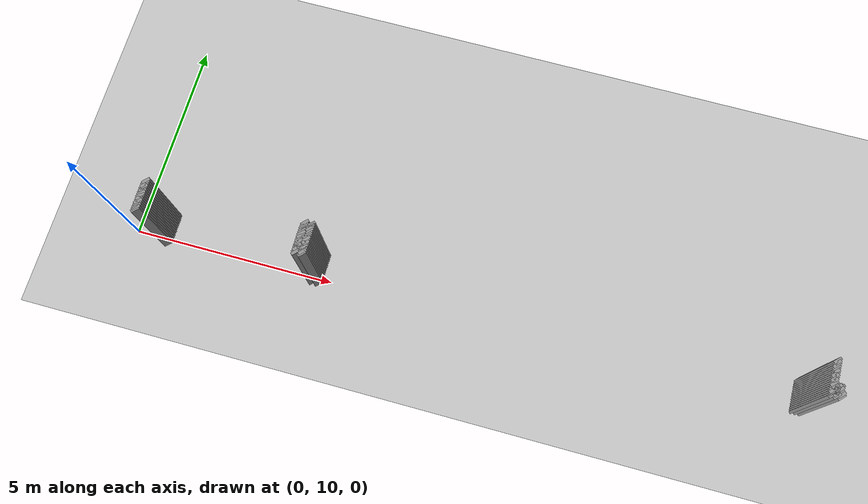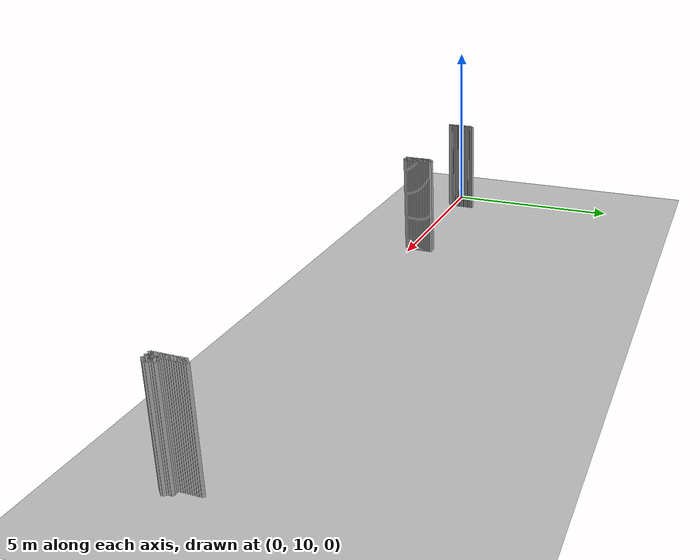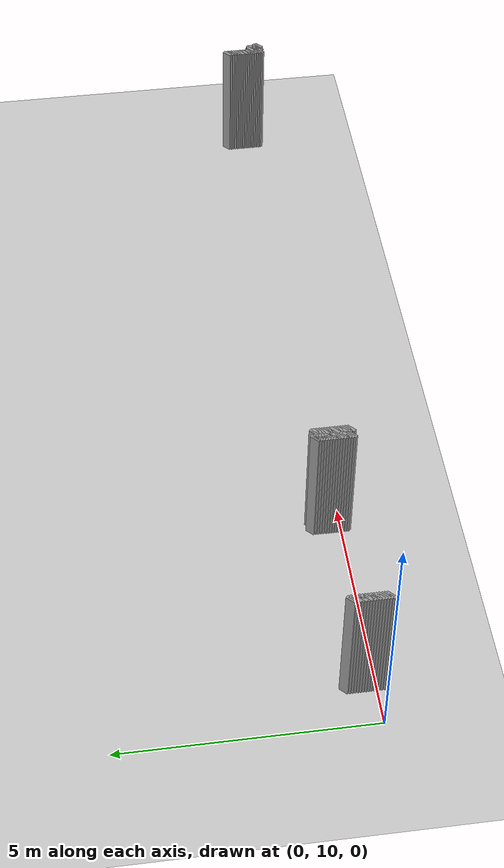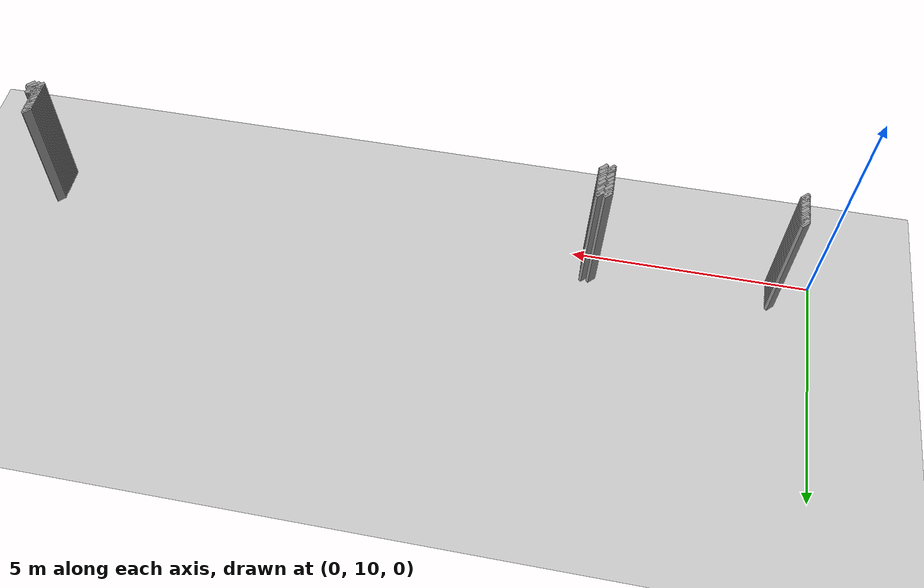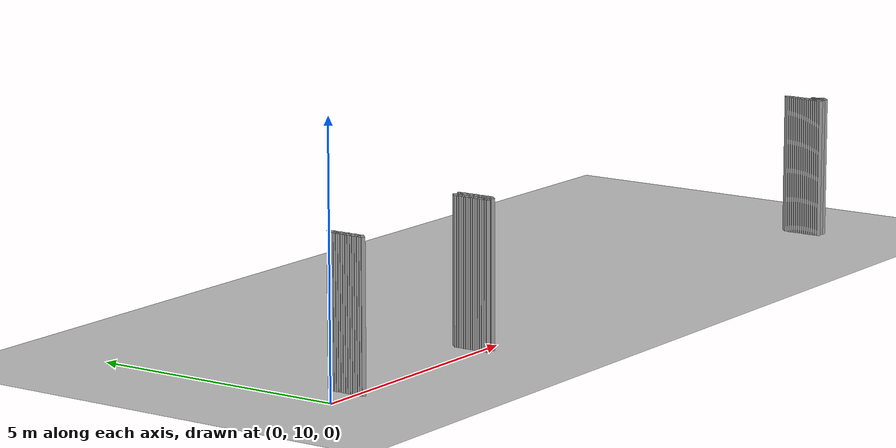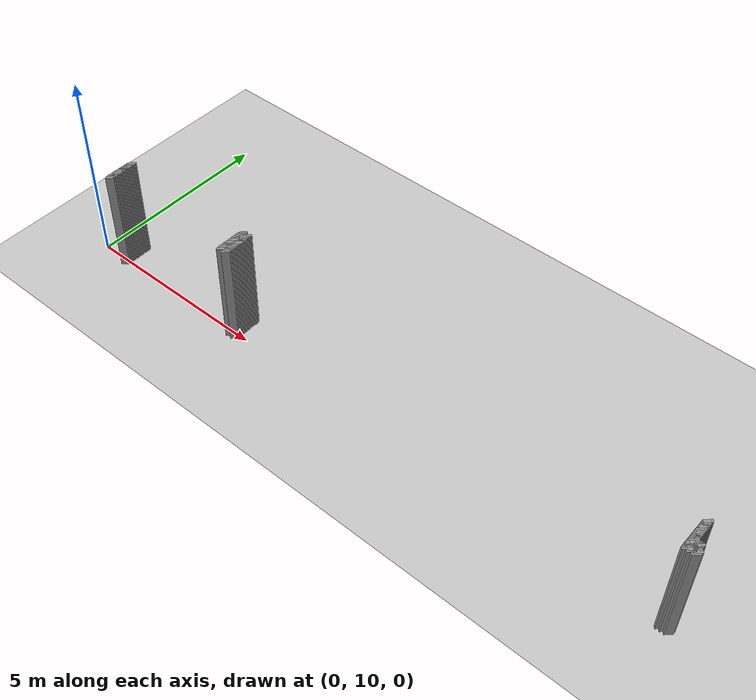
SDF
<sdf version="1.5">
 <world name="default">
  <include><uri>model://ground_plane</uri></include>
  <include><uri>model://sun</uri></include>
  <model name="grey_wall_1479">
   <static>1</static>
   <link name="link">
    <pose>16.45 10.65  1.4 0 0 -0.7853981633974838</pose>
    <collision name="collision">
     <geometry><box><size>0.07071067811865325 .2  2.8</size></box></geometry>
    </collision>
    <visual name="visual">
     <cast_shadows>0</cast_shadows>
     <geometry><box><size>0.07071067811865325 .2  2.8</size></box></geometry>
     <material>
      <script>
       <uri>model://grey_wall/materials/scripts</uri>
       <uri>model://grey_wall/materials/textures</uri>
       <name>vrc/grey_wall</name>
      </script>
     </material>
    </visual>
   </link>
  </model>
  <model name="grey_wall_1480">
   <static>1</static>
   <link name="link">
    <pose>0.8 10.600000000000001  1.4 0 0 -0.7853981633974549</pose>
    <collision name="collision">
     <geometry><box><size>0.07071067811865529 .2  2.8</size></box></geometry>
    </collision>
    <visual name="visual">
     <cast_shadows>0</cast_shadows>
     <geometry><box><size>0.07071067811865529 .2  2.8</size></box></geometry>
     <material>
      <script>
       <uri>model://grey_wall/materials/scripts</uri>
       <uri>model://grey_wall/materials/textures</uri>
       <name>vrc/grey_wall</name>
      </script>
     </material>
    </visual>
   </link>
  </model>
  <model name="grey_wall_1481">
   <static>1</static>
   <link name="link">
    <pose>4.55 10.600000000000001  1.4 0 0 -0.7853981633974483</pose>
    <collision name="collision">
     <geometry><box><size>0.07071067811865576 .2  2.8</size></box></geometry>
    </collision>
    <visual name="visual">
     <cast_shadows>0</cast_shadows>
     <geometry><box><size>0.07071067811865576 .2  2.8</size></box></geometry>
     <material>
      <script>
       <uri>model://grey_wall/materials/scripts</uri>
       <uri>model://grey_wall/materials/textures</uri>
       <name>vrc/grey_wall</name>
      </script>
     </material>
    </visual>
   </link>
  </model>
  <model name="grey_wall_1482">
   <static>1</static>
   <link name="link">
    <pose>4.7 10.600000000000001  1.4 0 0 -0.7853981633974483</pose>
    <collision name="collision">
     <geometry><box><size>0.07071067811865576 .2  2.8</size></box></geometry>
    </collision>
    <visual name="visual">
     <cast_shadows>0</cast_shadows>
     <geometry><box><size>0.07071067811865576 .2  2.8</size></box></geometry>
     <material>
      <script>
       <uri>model://grey_wall/materials/scripts</uri>
       <uri>model://grey_wall/materials/textures</uri>
       <name>vrc/grey_wall</name>
      </script>
     </material>
    </visual>
   </link>
  </model>
  <model name="grey_wall_1483">
   <static>1</static>
   <link name="link">
    <pose>16.45 10.600000000000001  1.4 0 0 -0.7853981633974838</pose>
    <collision name="collision">
     <geometry><box><size>0.07071067811865325 .2  2.8</size></box></geometry>
    </collision>
    <visual name="visual">
     <cast_shadows>0</cast_shadows>
     <geometry><box><size>0.07071067811865325 .2  2.8</size></box></geometry>
     <material>
      <script>
       <uri>model://grey_wall/materials/scripts</uri>
       <uri>model://grey_wall/materials/textures</uri>
       <name>vrc/grey_wall</name>
      </script>
     </material>
    </visual>
   </link>
  </model>
  <model name="grey_wall_1484">
   <static>1</static>
   <link name="link">
    <pose>0.8 10.55  1.4 0 0 -0.7853981633974549</pose>
    <collision name="collision">
     <geometry><box><size>0.07071067811865529 .2  2.8</size></box></geometry>
    </collision>
    <visual name="visual">
     <cast_shadows>0</cast_shadows>
     <geometry><box><size>0.07071067811865529 .2  2.8</size></box></geometry>
     <material>
      <script>
       <uri>model://grey_wall/materials/scripts</uri>
       <uri>model://grey_wall/materials/textures</uri>
       <name>vrc/grey_wall</name>
      </script>
     </material>
    </visual>
   </link>
  </model>
  <model name="grey_wall_1485">
   <static>1</static>
   <link name="link">
    <pose>4.55 10.55  1.4 0 0 -0.7853981633974483</pose>
    <collision name="collision">
     <geometry><box><size>0.07071067811865576 .2  2.8</size></box></geometry>
    </collision>
    <visual name="visual">
     <cast_shadows>0</cast_shadows>
     <geometry><box><size>0.07071067811865576 .2  2.8</size></box></geometry>
     <material>
      <script>
       <uri>model://grey_wall/materials/scripts</uri>
       <uri>model://grey_wall/materials/textures</uri>
       <name>vrc/grey_wall</name>
      </script>
     </material>
    </visual>
   </link>
  </model>
  <model name="grey_wall_1486">
   <static>1</static>
   <link name="link">
    <pose>4.7 10.55  1.4 0 0 -0.7853981633974483</pose>
    <collision name="collision">
     <geometry><box><size>0.07071067811865576 .2  2.8</size></box></geometry>
    </collision>
    <visual name="visual">
     <cast_shadows>0</cast_shadows>
     <geometry><box><size>0.07071067811865576 .2  2.8</size></box></geometry>
     <material>
      <script>
       <uri>model://grey_wall/materials/scripts</uri>
       <uri>model://grey_wall/materials/textures</uri>
       <name>vrc/grey_wall</name>
      </script>
     </material>
    </visual>
   </link>
  </model>
  <model name="grey_wall_1487">
   <static>1</static>
   <link name="link">
    <pose>16.45 10.55  1.4 0 0 -0.7853981633974838</pose>
    <collision name="collision">
     <geometry><box><size>0.07071067811865325 .2  2.8</size></box></geometry>
    </collision>
    <visual name="visual">
     <cast_shadows>0</cast_shadows>
     <geometry><box><size>0.07071067811865325 .2  2.8</size></box></geometry>
     <material>
      <script>
       <uri>model://grey_wall/materials/scripts</uri>
       <uri>model://grey_wall/materials/textures</uri>
       <name>vrc/grey_wall</name>
      </script>
     </material>
    </visual>
   </link>
  </model>
  <model name="grey_wall_1488">
   <static>1</static>
   <link name="link">
    <pose>0.8 10.5  1.4 0 0 -0.7853981633974549</pose>
    <collision name="collision">
     <geometry><box><size>0.07071067811865529 .2  2.8</size></box></geometry>
    </collision>
    <visual name="visual">
     <cast_shadows>0</cast_shadows>
     <geometry><box><size>0.07071067811865529 .2  2.8</size></box></geometry>
     <material>
      <script>
       <uri>model://grey_wall/materials/scripts</uri>
       <uri>model://grey_wall/materials/textures</uri>
       <name>vrc/grey_wall</name>
      </script>
     </material>
    </visual>
   </link>
  </model>
  <model name="grey_wall_1489">
   <static>1</static>
   <link name="link">
    <pose>4.55 10.5  1.4 0 0 -0.7853981633974483</pose>
    <collision name="collision">
     <geometry><box><size>0.07071067811865576 .2  2.8</size></box></geometry>
    </collision>
    <visual name="visual">
     <cast_shadows>0</cast_shadows>
     <geometry><box><size>0.07071067811865576 .2  2.8</size></box></geometry>
     <material>
      <script>
       <uri>model://grey_wall/materials/scripts</uri>
       <uri>model://grey_wall/materials/textures</uri>
       <name>vrc/grey_wall</name>
      </script>
     </material>
    </visual>
   </link>
  </model>
  <model name="grey_wall_1490">
   <static>1</static>
   <link name="link">
    <pose>4.7 10.5  1.4 0 0 -0.7853981633974483</pose>
    <collision name="collision">
     <geometry><box><size>0.07071067811865576 .2  2.8</size></box></geometry>
    </collision>
    <visual name="visual">
     <cast_shadows>0</cast_shadows>
     <geometry><box><size>0.07071067811865576 .2  2.8</size></box></geometry>
     <material>
      <script>
       <uri>model://grey_wall/materials/scripts</uri>
       <uri>model://grey_wall/materials/textures</uri>
       <name>vrc/grey_wall</name>
      </script>
     </material>
    </visual>
   </link>
  </model>
  <model name="grey_wall_1491">
   <static>1</static>
   <link name="link">
    <pose>16.45 10.5  1.4 0 0 -0.7853981633974838</pose>
    <collision name="collision">
     <geometry><box><size>0.07071067811865325 .2  2.8</size></box></geometry>
    </collision>
    <visual name="visual">
     <cast_shadows>0</cast_shadows>
     <geometry><box><size>0.07071067811865325 .2  2.8</size></box></geometry>
     <material>
      <script>
       <uri>model://grey_wall/materials/scripts</uri>
       <uri>model://grey_wall/materials/textures</uri>
       <name>vrc/grey_wall</name>
      </script>
     </material>
    </visual>
   </link>
  </model>
  <model name="grey_wall_1492">
   <static>1</static>
   <link name="link">
    <pose>0.8 10.450000000000001  1.4 0 0 -0.7853981633974549</pose>
    <collision name="collision">
     <geometry><box><size>0.07071067811865529 .2  2.8</size></box></geometry>
    </collision>
    <visual name="visual">
     <cast_shadows>0</cast_shadows>
     <geometry><box><size>0.07071067811865529 .2  2.8</size></box></geometry>
     <material>
      <script>
       <uri>model://grey_wall/materials/scripts</uri>
       <uri>model://grey_wall/materials/textures</uri>
       <name>vrc/grey_wall</name>
      </script>
     </material>
    </visual>
   </link>
  </model>
  <model name="grey_wall_1493">
   <static>1</static>
   <link name="link">
    <pose>4.55 10.450000000000001  1.4 0 0 -0.7853981633974483</pose>
    <collision name="collision">
     <geometry><box><size>0.07071067811865576 .2  2.8</size></box></geometry>
    </collision>
    <visual name="visual">
     <cast_shadows>0</cast_shadows>
     <geometry><box><size>0.07071067811865576 .2  2.8</size></box></geometry>
     <material>
      <script>
       <uri>model://grey_wall/materials/scripts</uri>
       <uri>model://grey_wall/materials/textures</uri>
       <name>vrc/grey_wall</name>
      </script>
     </material>
    </visual>
   </link>
  </model>
  <model name="grey_wall_1494">
   <static>1</static>
   <link name="link">
    <pose>4.7 10.450000000000001  1.4 0 0 -0.7853981633974483</pose>
    <collision name="collision">
     <geometry><box><size>0.07071067811865576 .2  2.8</size></box></geometry>
    </collision>
    <visual name="visual">
     <cast_shadows>0</cast_shadows>
     <geometry><box><size>0.07071067811865576 .2  2.8</size></box></geometry>
     <material>
      <script>
       <uri>model://grey_wall/materials/scripts</uri>
       <uri>model://grey_wall/materials/textures</uri>
       <name>vrc/grey_wall</name>
      </script>
     </material>
    </visual>
   </link>
  </model>
  <model name="grey_wall_1495">
   <static>1</static>
   <link name="link">
    <pose>16.45 10.450000000000001  1.4 0 0 -0.7853981633974838</pose>
    <collision name="collision">
     <geometry><box><size>0.07071067811865325 .2  2.8</size></box></geometry>
    </collision>
    <visual name="visual">
     <cast_shadows>0</cast_shadows>
     <geometry><box><size>0.07071067811865325 .2  2.8</size></box></geometry>
     <material>
      <script>
       <uri>model://grey_wall/materials/scripts</uri>
       <uri>model://grey_wall/materials/textures</uri>
       <name>vrc/grey_wall</name>
      </script>
     </material>
    </visual>
   </link>
  </model>
  <model name="grey_wall_1496">
   <static>1</static>
   <link name="link">
    <pose>0.8 10.4  1.4 0 0 -0.7853981633974549</pose>
    <collision name="collision">
     <geometry><box><size>0.07071067811865529 .2  2.8</size></box></geometry>
    </collision>
    <visual name="visual">
     <cast_shadows>0</cast_shadows>
     <geometry><box><size>0.07071067811865529 .2  2.8</size></box></geometry>
     <material>
      <script>
       <uri>model://grey_wall/materials/scripts</uri>
       <uri>model://grey_wall/materials/textures</uri>
       <name>vrc/grey_wall</name>
      </script>
     </material>
    </visual>
   </link>
  </model>
  <model name="grey_wall_1497">
   <static>1</static>
   <link name="link">
    <pose>4.55 10.4  1.4 0 0 -0.7853981633974483</pose>
    <collision name="collision">
     <geometry><box><size>0.07071067811865576 .2  2.8</size></box></geometry>
    </collision>
    <visual name="visual">
     <cast_shadows>0</cast_shadows>
     <geometry><box><size>0.07071067811865576 .2  2.8</size></box></geometry>
     <material>
      <script>
       <uri>model://grey_wall/materials/scripts</uri>
       <uri>model://grey_wall/materials/textures</uri>
       <name>vrc/grey_wall</name>
      </script>
     </material>
    </visual>
   </link>
  </model>
  <model name="grey_wall_1498">
   <static>1</static>
   <link name="link">
    <pose>4.7 10.4  1.4 0 0 -0.7853981633974483</pose>
    <collision name="collision">
     <geometry><box><size>0.07071067811865576 .2  2.8</size></box></geometry>
    </collision>
    <visual name="visual">
     <cast_shadows>0</cast_shadows>
     <geometry><box><size>0.07071067811865576 .2  2.8</size></box></geometry>
     <material>
      <script>
       <uri>model://grey_wall/materials/scripts</uri>
       <uri>model://grey_wall/materials/textures</uri>
       <name>vrc/grey_wall</name>
      </script>
     </material>
    </visual>
   </link>
  </model>
  <model name="grey_wall_1499">
   <static>1</static>
   <link name="link">
    <pose>16.45 10.4  1.4 0 0 -0.7853981633974838</pose>
    <collision name="collision">
     <geometry><box><size>0.07071067811865325 .2  2.8</size></box></geometry>
    </collision>
    <visual name="visual">
     <cast_shadows>0</cast_shadows>
     <geometry><box><size>0.07071067811865325 .2  2.8</size></box></geometry>
     <material>
      <script>
       <uri>model://grey_wall/materials/scripts</uri>
       <uri>model://grey_wall/materials/textures</uri>
       <name>vrc/grey_wall</name>
      </script>
     </material>
    </visual>
   </link>
  </model>
  <model name="grey_wall_1500">
   <static>1</static>
   <link name="link">
    <pose>0.8 10.350000000000001  1.4 0 0 -0.7853981633974549</pose>
    <collision name="collision">
     <geometry><box><size>0.07071067811865529 .2  2.8</size></box></geometry>
    </collision>
    <visual name="visual">
     <cast_shadows>0</cast_shadows>
     <geometry><box><size>0.07071067811865529 .2  2.8</size></box></geometry>
     <material>
      <script>
       <uri>model://grey_wall/materials/scripts</uri>
       <uri>model://grey_wall/materials/textures</uri>
       <name>vrc/grey_wall</name>
      </script>
     </material>
    </visual>
   </link>
  </model>
  <model name="grey_wall_1501">
   <static>1</static>
   <link name="link">
    <pose>4.55 10.350000000000001  1.4 0 0 -0.7853981633974483</pose>
    <collision name="collision">
     <geometry><box><size>0.07071067811865576 .2  2.8</size></box></geometry>
    </collision>
    <visual name="visual">
     <cast_shadows>0</cast_shadows>
     <geometry><box><size>0.07071067811865576 .2  2.8</size></box></geometry>
     <material>
      <script>
       <uri>model://grey_wall/materials/scripts</uri>
       <uri>model://grey_wall/materials/textures</uri>
       <name>vrc/grey_wall</name>
      </script>
     </material>
    </visual>
   </link>
  </model>
  <model name="grey_wall_1502">
   <static>1</static>
   <link name="link">
    <pose>4.7 10.350000000000001  1.4 0 0 -0.7853981633974483</pose>
    <collision name="collision">
     <geometry><box><size>0.07071067811865576 .2  2.8</size></box></geometry>
    </collision>
    <visual name="visual">
     <cast_shadows>0</cast_shadows>
     <geometry><box><size>0.07071067811865576 .2  2.8</size></box></geometry>
     <material>
      <script>
       <uri>model://grey_wall/materials/scripts</uri>
       <uri>model://grey_wall/materials/textures</uri>
       <name>vrc/grey_wall</name>
      </script>
     </material>
    </visual>
   </link>
  </model>
  <model name="grey_wall_1503">
   <static>1</static>
   <link name="link">
    <pose>16.45 10.350000000000001  1.4 0 0 -0.7853981633974838</pose>
    <collision name="collision">
     <geometry><box><size>0.07071067811865325 .2  2.8</size></box></geometry>
    </collision>
    <visual name="visual">
     <cast_shadows>0</cast_shadows>
     <geometry><box><size>0.07071067811865325 .2  2.8</size></box></geometry>
     <material>
      <script>
       <uri>model://grey_wall/materials/scripts</uri>
       <uri>model://grey_wall/materials/textures</uri>
       <name>vrc/grey_wall</name>
      </script>
     </material>
    </visual>
   </link>
  </model>
  <model name="grey_wall_1504">
   <static>1</static>
   <link name="link">
    <pose>0.8 10.3  1.4 0 0 -0.7853981633974549</pose>
    <collision name="collision">
     <geometry><box><size>0.07071067811865529 .2  2.8</size></box></geometry>
    </collision>
    <visual name="visual">
     <cast_shadows>0</cast_shadows>
     <geometry><box><size>0.07071067811865529 .2  2.8</size></box></geometry>
     <material>
      <script>
       <uri>model://grey_wall/materials/scripts</uri>
       <uri>model://grey_wall/materials/textures</uri>
       <name>vrc/grey_wall</name>
      </script>
     </material>
    </visual>
   </link>
  </model>
  <model name="grey_wall_1505">
   <static>1</static>
   <link name="link">
    <pose>4.55 10.3  1.4 0 0 -0.7853981633974483</pose>
    <collision name="collision">
     <geometry><box><size>0.07071067811865576 .2  2.8</size></box></geometry>
    </collision>
    <visual name="visual">
     <cast_shadows>0</cast_shadows>
     <geometry><box><size>0.07071067811865576 .2  2.8</size></box></geometry>
     <material>
      <script>
       <uri>model://grey_wall/materials/scripts</uri>
       <uri>model://grey_wall/materials/textures</uri>
       <name>vrc/grey_wall</name>
      </script>
     </material>
    </visual>
   </link>
  </model>
  <model name="grey_wall_1506">
   <static>1</static>
   <link name="link">
    <pose>4.7 10.3  1.4 0 0 -0.7853981633974483</pose>
    <collision name="collision">
     <geometry><box><size>0.07071067811865576 .2  2.8</size></box></geometry>
    </collision>
    <visual name="visual">
     <cast_shadows>0</cast_shadows>
     <geometry><box><size>0.07071067811865576 .2  2.8</size></box></geometry>
     <material>
      <script>
       <uri>model://grey_wall/materials/scripts</uri>
       <uri>model://grey_wall/materials/textures</uri>
       <name>vrc/grey_wall</name>
      </script>
     </material>
    </visual>
   </link>
  </model>
  <model name="grey_wall_1507">
   <static>1</static>
   <link name="link">
    <pose>16.45 10.3  1.4 0 0 -0.7853981633974838</pose>
    <collision name="collision">
     <geometry><box><size>0.07071067811865325 .2  2.8</size></box></geometry>
    </collision>
    <visual name="visual">
     <cast_shadows>0</cast_shadows>
     <geometry><box><size>0.07071067811865325 .2  2.8</size></box></geometry>
     <material>
      <script>
       <uri>model://grey_wall/materials/scripts</uri>
       <uri>model://grey_wall/materials/textures</uri>
       <name>vrc/grey_wall</name>
      </script>
     </material>
    </visual>
   </link>
  </model>
  <model name="grey_wall_1508">
   <static>1</static>
   <link name="link">
    <pose>0.8 10.25  1.4 0 0 -0.7853981633974549</pose>
    <collision name="collision">
     <geometry><box><size>0.07071067811865529 .2  2.8</size></box></geometry>
    </collision>
    <visual name="visual">
     <cast_shadows>0</cast_shadows>
     <geometry><box><size>0.07071067811865529 .2  2.8</size></box></geometry>
     <material>
      <script>
       <uri>model://grey_wall/materials/scripts</uri>
       <uri>model://grey_wall/materials/textures</uri>
       <name>vrc/grey_wall</name>
      </script>
     </material>
    </visual>
   </link>
  </model>
  <model name="grey_wall_1509">
   <static>1</static>
   <link name="link">
    <pose>4.55 10.25  1.4 0 0 -0.7853981633974483</pose>
    <collision name="collision">
     <geometry><box><size>0.07071067811865576 .2  2.8</size></box></geometry>
    </collision>
    <visual name="visual">
     <cast_shadows>0</cast_shadows>
     <geometry><box><size>0.07071067811865576 .2  2.8</size></box></geometry>
     <material>
      <script>
       <uri>model://grey_wall/materials/scripts</uri>
       <uri>model://grey_wall/materials/textures</uri>
       <name>vrc/grey_wall</name>
      </script>
     </material>
    </visual>
   </link>
  </model>
  <model name="grey_wall_1510">
   <static>1</static>
   <link name="link">
    <pose>4.7 10.25  1.4 0 0 -0.7853981633974483</pose>
    <collision name="collision">
     <geometry><box><size>0.07071067811865576 .2  2.8</size></box></geometry>
    </collision>
    <visual name="visual">
     <cast_shadows>0</cast_shadows>
     <geometry><box><size>0.07071067811865576 .2  2.8</size></box></geometry>
     <material>
      <script>
       <uri>model://grey_wall/materials/scripts</uri>
       <uri>model://grey_wall/materials/textures</uri>
       <name>vrc/grey_wall</name>
      </script>
     </material>
    </visual>
   </link>
  </model>
  <model name="grey_wall_1511">
   <static>1</static>
   <link name="link">
    <pose>16.45 10.25  1.4 0 0 -0.7853981633974838</pose>
    <collision name="collision">
     <geometry><box><size>0.07071067811865325 .2  2.8</size></box></geometry>
    </collision>
    <visual name="visual">
     <cast_shadows>0</cast_shadows>
     <geometry><box><size>0.07071067811865325 .2  2.8</size></box></geometry>
     <material>
      <script>
       <uri>model://grey_wall/materials/scripts</uri>
       <uri>model://grey_wall/materials/textures</uri>
       <name>vrc/grey_wall</name>
      </script>
     </material>
    </visual>
   </link>
  </model>
  <model name="grey_wall_1512">
   <static>1</static>
   <link name="link">
    <pose>0.8 10.200000000000001  1.4 0 0 -0.7853981633974549</pose>
    <collision name="collision">
     <geometry><box><size>0.07071067811865529 .2  2.8</size></box></geometry>
    </collision>
    <visual name="visual">
     <cast_shadows>0</cast_shadows>
     <geometry><box><size>0.07071067811865529 .2  2.8</size></box></geometry>
     <material>
      <script>
       <uri>model://grey_wall/materials/scripts</uri>
       <uri>model://grey_wall/materials/textures</uri>
       <name>vrc/grey_wall</name>
      </script>
     </material>
    </visual>
   </link>
  </model>
  <model name="grey_wall_1513">
   <static>1</static>
   <link name="link">
    <pose>4.55 10.200000000000001  1.4 0 0 -0.7853981633974483</pose>
    <collision name="collision">
     <geometry><box><size>0.07071067811865576 .2  2.8</size></box></geometry>
    </collision>
    <visual name="visual">
     <cast_shadows>0</cast_shadows>
     <geometry><box><size>0.07071067811865576 .2  2.8</size></box></geometry>
     <material>
      <script>
       <uri>model://grey_wall/materials/scripts</uri>
       <uri>model://grey_wall/materials/textures</uri>
       <name>vrc/grey_wall</name>
      </script>
     </material>
    </visual>
   </link>
  </model>
  <model name="grey_wall_1514">
   <static>1</static>
   <link name="link">
    <pose>4.7 10.200000000000001  1.4 0 0 -0.7853981633974483</pose>
    <collision name="collision">
     <geometry><box><size>0.07071067811865576 .2  2.8</size></box></geometry>
    </collision>
    <visual name="visual">
     <cast_shadows>0</cast_shadows>
     <geometry><box><size>0.07071067811865576 .2  2.8</size></box></geometry>
     <material>
      <script>
       <uri>model://grey_wall/materials/scripts</uri>
       <uri>model://grey_wall/materials/textures</uri>
       <name>vrc/grey_wall</name>
      </script>
     </material>
    </visual>
   </link>
  </model>
  <model name="grey_wall_1515">
   <static>1</static>
   <link name="link">
    <pose>16.45 10.200000000000001  1.4 0 0 -0.7853981633974838</pose>
    <collision name="collision">
     <geometry><box><size>0.07071067811865325 .2  2.8</size></box></geometry>
    </collision>
    <visual name="visual">
     <cast_shadows>0</cast_shadows>
     <geometry><box><size>0.07071067811865325 .2  2.8</size></box></geometry>
     <material>
      <script>
       <uri>model://grey_wall/materials/scripts</uri>
       <uri>model://grey_wall/materials/textures</uri>
       <name>vrc/grey_wall</name>
      </script>
     </material>
    </visual>
   </link>
  </model>
  <model name="grey_wall_1516">
   <static>1</static>
   <link name="link">
    <pose>0.8 10.15  1.4 0 0 -0.7853981633974549</pose>
    <collision name="collision">
     <geometry><box><size>0.07071067811865529 .2  2.8</size></box></geometry>
    </collision>
    <visual name="visual">
     <cast_shadows>0</cast_shadows>
     <geometry><box><size>0.07071067811865529 .2  2.8</size></box></geometry>
     <material>
      <script>
       <uri>model://grey_wall/materials/scripts</uri>
       <uri>model://grey_wall/materials/textures</uri>
       <name>vrc/grey_wall</name>
      </script>
     </material>
    </visual>
   </link>
  </model>
  <model name="grey_wall_1517">
   <static>1</static>
   <link name="link">
    <pose>4.55 10.15  1.4 0 0 -0.7853981633974483</pose>
    <collision name="collision">
     <geometry><box><size>0.07071067811865576 .2  2.8</size></box></geometry>
    </collision>
    <visual name="visual">
     <cast_shadows>0</cast_shadows>
     <geometry><box><size>0.07071067811865576 .2  2.8</size></box></geometry>
     <material>
      <script>
       <uri>model://grey_wall/materials/scripts</uri>
       <uri>model://grey_wall/materials/textures</uri>
       <name>vrc/grey_wall</name>
      </script>
     </material>
    </visual>
   </link>
  </model>
  <model name="grey_wall_1518">
   <static>1</static>
   <link name="link">
    <pose>4.7 10.15  1.4 0 0 -0.7853981633974483</pose>
    <collision name="collision">
     <geometry><box><size>0.07071067811865576 .2  2.8</size></box></geometry>
    </collision>
    <visual name="visual">
     <cast_shadows>0</cast_shadows>
     <geometry><box><size>0.07071067811865576 .2  2.8</size></box></geometry>
     <material>
      <script>
       <uri>model://grey_wall/materials/scripts</uri>
       <uri>model://grey_wall/materials/textures</uri>
       <name>vrc/grey_wall</name>
      </script>
     </material>
    </visual>
   </link>
  </model>
  <model name="grey_wall_1519">
   <static>1</static>
   <link name="link">
    <pose>16.45 10.15  1.4 0 0 -0.7853981633974838</pose>
    <collision name="collision">
     <geometry><box><size>0.07071067811865325 .2  2.8</size></box></geometry>
    </collision>
    <visual name="visual">
     <cast_shadows>0</cast_shadows>
     <geometry><box><size>0.07071067811865325 .2  2.8</size></box></geometry>
     <material>
      <script>
       <uri>model://grey_wall/materials/scripts</uri>
       <uri>model://grey_wall/materials/textures</uri>
       <name>vrc/grey_wall</name>
      </script>
     </material>
    </visual>
   </link>
  </model>
  <model name="grey_wall_1520">
   <static>1</static>
   <link name="link">
    <pose>0.8 10.100000000000001  1.4 0 0 -0.7853981633974549</pose>
    <collision name="collision">
     <geometry><box><size>0.07071067811865529 .2  2.8</size></box></geometry>
    </collision>
    <visual name="visual">
     <cast_shadows>0</cast_shadows>
     <geometry><box><size>0.07071067811865529 .2  2.8</size></box></geometry>
     <material>
      <script>
       <uri>model://grey_wall/materials/scripts</uri>
       <uri>model://grey_wall/materials/textures</uri>
       <name>vrc/grey_wall</name>
      </script>
     </material>
    </visual>
   </link>
  </model>
  <model name="grey_wall_1521">
   <static>1</static>
   <link name="link">
    <pose>4.55 10.100000000000001  1.4 0 0 -0.7853981633974483</pose>
    <collision name="collision">
     <geometry><box><size>0.07071067811865576 .2  2.8</size></box></geometry>
    </collision>
    <visual name="visual">
     <cast_shadows>0</cast_shadows>
     <geometry><box><size>0.07071067811865576 .2  2.8</size></box></geometry>
     <material>
      <script>
       <uri>model://grey_wall/materials/scripts</uri>
       <uri>model://grey_wall/materials/textures</uri>
       <name>vrc/grey_wall</name>
      </script>
     </material>
    </visual>
   </link>
  </model>
  <model name="grey_wall_1522">
   <static>1</static>
   <link name="link">
    <pose>4.7 10.100000000000001  1.4 0 0 -0.7853981633974483</pose>
    <collision name="collision">
     <geometry><box><size>0.07071067811865576 .2  2.8</size></box></geometry>
    </collision>
    <visual name="visual">
     <cast_shadows>0</cast_shadows>
     <geometry><box><size>0.07071067811865576 .2  2.8</size></box></geometry>
     <material>
      <script>
       <uri>model://grey_wall/materials/scripts</uri>
       <uri>model://grey_wall/materials/textures</uri>
       <name>vrc/grey_wall</name>
      </script>
     </material>
    </visual>
   </link>
  </model>
  <model name="grey_wall_1523">
   <static>1</static>
   <link name="link">
    <pose>16.45 10.100000000000001  1.4 0 0 -0.7853981633974838</pose>
    <collision name="collision">
     <geometry><box><size>0.07071067811865325 .2  2.8</size></box></geometry>
    </collision>
    <visual name="visual">
     <cast_shadows>0</cast_shadows>
     <geometry><box><size>0.07071067811865325 .2  2.8</size></box></geometry>
     <material>
      <script>
       <uri>model://grey_wall/materials/scripts</uri>
       <uri>model://grey_wall/materials/textures</uri>
       <name>vrc/grey_wall</name>
      </script>
     </material>
    </visual>
   </link>
  </model>
  <model name="grey_wall_1524">
   <static>1</static>
   <link name="link">
    <pose>16.5 10.100000000000001  1.4 0 0 -0.7853981633974838</pose>
    <collision name="collision">
     <geometry><box><size>0.07071067811865325 .2  2.8</size></box></geometry>
    </collision>
    <visual name="visual">
     <cast_shadows>0</cast_shadows>
     <geometry><box><size>0.07071067811865325 .2  2.8</size></box></geometry>
     <material>
      <script>
       <uri>model://grey_wall/materials/scripts</uri>
       <uri>model://grey_wall/materials/textures</uri>
       <name>vrc/grey_wall</name>
      </script>
     </material>
    </visual>
   </link>
  </model>
  <model name="grey_wall_1525">
   <static>1</static>
   <link name="link">
    <pose>16.55 10.100000000000001  1.4 0 0 -0.7853981633974838</pose>
    <collision name="collision">
     <geometry><box><size>0.07071067811865325 .2  2.8</size></box></geometry>
    </collision>
    <visual name="visual">
     <cast_shadows>0</cast_shadows>
     <geometry><box><size>0.07071067811865325 .2  2.8</size></box></geometry>
     <material>
      <script>
       <uri>model://grey_wall/materials/scripts</uri>
       <uri>model://grey_wall/materials/textures</uri>
       <name>vrc/grey_wall</name>
      </script>
     </material>
    </visual>
   </link>
  </model>
  <model name="grey_wall_1526">
   <static>1</static>
   <link name="link">
    <pose>16.6 10.100000000000001  1.4 0 0 -0.7853981633974838</pose>
    <collision name="collision">
     <geometry><box><size>0.07071067811865325 .2  2.8</size></box></geometry>
    </collision>
    <visual name="visual">
     <cast_shadows>0</cast_shadows>
     <geometry><box><size>0.07071067811865325 .2  2.8</size></box></geometry>
     <material>
      <script>
       <uri>model://grey_wall/materials/scripts</uri>
       <uri>model://grey_wall/materials/textures</uri>
       <name>vrc/grey_wall</name>
      </script>
     </material>
    </visual>
   </link>
  </model>
  <model name="grey_wall_1527">
   <static>1</static>
   <link name="link">
    <pose>0.8 10.05  1.4 0 0 -0.7853981633974549</pose>
    <collision name="collision">
     <geometry><box><size>0.07071067811865529 .2  2.8</size></box></geometry>
    </collision>
    <visual name="visual">
     <cast_shadows>0</cast_shadows>
     <geometry><box><size>0.07071067811865529 .2  2.8</size></box></geometry>
     <material>
      <script>
       <uri>model://grey_wall/materials/scripts</uri>
       <uri>model://grey_wall/materials/textures</uri>
       <name>vrc/grey_wall</name>
      </script>
     </material>
    </visual>
   </link>
  </model>
  <model name="grey_wall_1528">
   <static>1</static>
   <link name="link">
    <pose>4.55 10.05  1.4 0 0 -0.7853981633974483</pose>
    <collision name="collision">
     <geometry><box><size>0.07071067811865576 .2  2.8</size></box></geometry>
    </collision>
    <visual name="visual">
     <cast_shadows>0</cast_shadows>
     <geometry><box><size>0.07071067811865576 .2  2.8</size></box></geometry>
     <material>
      <script>
       <uri>model://grey_wall/materials/scripts</uri>
       <uri>model://grey_wall/materials/textures</uri>
       <name>vrc/grey_wall</name>
      </script>
     </material>
    </visual>
   </link>
  </model>
  <model name="grey_wall_1529">
   <static>1</static>
   <link name="link">
    <pose>4.7 10.05  1.4 0 0 -0.7853981633974483</pose>
    <collision name="collision">
     <geometry><box><size>0.07071067811865576 .2  2.8</size></box></geometry>
    </collision>
    <visual name="visual">
     <cast_shadows>0</cast_shadows>
     <geometry><box><size>0.07071067811865576 .2  2.8</size></box></geometry>
     <material>
      <script>
       <uri>model://grey_wall/materials/scripts</uri>
       <uri>model://grey_wall/materials/textures</uri>
       <name>vrc/grey_wall</name>
      </script>
     </material>
    </visual>
   </link>
  </model>
  <model name="grey_wall_1530">
   <static>1</static>
   <link name="link">
    <pose>16.45 10.05  1.4 0 0 -0.7853981633974838</pose>
    <collision name="collision">
     <geometry><box><size>0.07071067811865325 .2  2.8</size></box></geometry>
    </collision>
    <visual name="visual">
     <cast_shadows>0</cast_shadows>
     <geometry><box><size>0.07071067811865325 .2  2.8</size></box></geometry>
     <material>
      <script>
       <uri>model://grey_wall/materials/scripts</uri>
       <uri>model://grey_wall/materials/textures</uri>
       <name>vrc/grey_wall</name>
      </script>
     </material>
    </visual>
   </link>
  </model>
  <model name="grey_wall_1531">
   <static>1</static>
   <link name="link">
    <pose>16.5 10.05  1.4 0 0 -0.7853981633974838</pose>
    <collision name="collision">
     <geometry><box><size>0.07071067811865325 .2  2.8</size></box></geometry>
    </collision>
    <visual name="visual">
     <cast_shadows>0</cast_shadows>
     <geometry><box><size>0.07071067811865325 .2  2.8</size></box></geometry>
     <material>
      <script>
       <uri>model://grey_wall/materials/scripts</uri>
       <uri>model://grey_wall/materials/textures</uri>
       <name>vrc/grey_wall</name>
      </script>
     </material>
    </visual>
   </link>
  </model>
  <model name="grey_wall_1532">
   <static>1</static>
   <link name="link">
    <pose>16.6 10.05  1.4 0 0 -0.7853981633974838</pose>
    <collision name="collision">
     <geometry><box><size>0.07071067811865325 .2  2.8</size></box></geometry>
    </collision>
    <visual name="visual">
     <cast_shadows>0</cast_shadows>
     <geometry><box><size>0.07071067811865325 .2  2.8</size></box></geometry>
     <material>
      <script>
       <uri>model://grey_wall/materials/scripts</uri>
       <uri>model://grey_wall/materials/textures</uri>
       <name>vrc/grey_wall</name>
      </script>
     </material>
    </visual>
   </link>
  </model>
  <model name="grey_wall_1533">
   <static>1</static>
   <link name="link">
    <pose>0.8 10.0  1.4 0 0 -0.7853981633974549</pose>
    <collision name="collision">
     <geometry><box><size>0.07071067811865529 .2  2.8</size></box></geometry>
    </collision>
    <visual name="visual">
     <cast_shadows>0</cast_shadows>
     <geometry><box><size>0.07071067811865529 .2  2.8</size></box></geometry>
     <material>
      <script>
       <uri>model://grey_wall/materials/scripts</uri>
       <uri>model://grey_wall/materials/textures</uri>
       <name>vrc/grey_wall</name>
      </script>
     </material>
    </visual>
   </link>
  </model>
  <model name="grey_wall_1534">
   <static>1</static>
   <link name="link">
    <pose>4.55 10.0  1.4 0 0 -0.7853981633974483</pose>
    <collision name="collision">
     <geometry><box><size>0.07071067811865576 .2  2.8</size></box></geometry>
    </collision>
    <visual name="visual">
     <cast_shadows>0</cast_shadows>
     <geometry><box><size>0.07071067811865576 .2  2.8</size></box></geometry>
     <material>
      <script>
       <uri>model://grey_wall/materials/scripts</uri>
       <uri>model://grey_wall/materials/textures</uri>
       <name>vrc/grey_wall</name>
      </script>
     </material>
    </visual>
   </link>
  </model>
  <model name="grey_wall_1535">
   <static>1</static>
   <link name="link">
    <pose>4.7 10.0  1.4 0 0 -0.7853981633974483</pose>
    <collision name="collision">
     <geometry><box><size>0.07071067811865576 .2  2.8</size></box></geometry>
    </collision>
    <visual name="visual">
     <cast_shadows>0</cast_shadows>
     <geometry><box><size>0.07071067811865576 .2  2.8</size></box></geometry>
     <material>
      <script>
       <uri>model://grey_wall/materials/scripts</uri>
       <uri>model://grey_wall/materials/textures</uri>
       <name>vrc/grey_wall</name>
      </script>
     </material>
    </visual>
   </link>
  </model>
  <model name="grey_wall_1536">
   <static>1</static>
   <link name="link">
    <pose>16.45 10.0  1.4 0 0 -0.7853981633974838</pose>
    <collision name="collision">
     <geometry><box><size>0.07071067811865325 .2  2.8</size></box></geometry>
    </collision>
    <visual name="visual">
     <cast_shadows>0</cast_shadows>
     <geometry><box><size>0.07071067811865325 .2  2.8</size></box></geometry>
     <material>
      <script>
       <uri>model://grey_wall/materials/scripts</uri>
       <uri>model://grey_wall/materials/textures</uri>
       <name>vrc/grey_wall</name>
      </script>
     </material>
    </visual>
   </link>
  </model>
  <model name="grey_wall_1537">
   <static>1</static>
   <link name="link">
    <pose>16.5 10.0  1.4 0 0 -0.7853981633974838</pose>
    <collision name="collision">
     <geometry><box><size>0.07071067811865325 .2  2.8</size></box></geometry>
    </collision>
    <visual name="visual">
     <cast_shadows>0</cast_shadows>
     <geometry><box><size>0.07071067811865325 .2  2.8</size></box></geometry>
     <material>
      <script>
       <uri>model://grey_wall/materials/scripts</uri>
       <uri>model://grey_wall/materials/textures</uri>
       <name>vrc/grey_wall</name>
      </script>
     </material>
    </visual>
   </link>
  </model>
  <model name="grey_wall_1538">
   <static>1</static>
   <link name="link">
    <pose>16.55 10.0  1.4 0 0 -0.7853981633974838</pose>
    <collision name="collision">
     <geometry><box><size>0.07071067811865325 .2  2.8</size></box></geometry>
    </collision>
    <visual name="visual">
     <cast_shadows>0</cast_shadows>
     <geometry><box><size>0.07071067811865325 .2  2.8</size></box></geometry>
     <material>
      <script>
       <uri>model://grey_wall/materials/scripts</uri>
       <uri>model://grey_wall/materials/textures</uri>
       <name>vrc/grey_wall</name>
      </script>
     </material>
    </visual>
   </link>
  </model>
  <model name="grey_wall_1539">
   <static>1</static>
   <link name="link">
    <pose>16.6 10.0  1.4 0 0 -0.7853981633974838</pose>
    <collision name="collision">
     <geometry><box><size>0.07071067811865325 .2  2.8</size></box></geometry>
    </collision>
    <visual name="visual">
     <cast_shadows>0</cast_shadows>
     <geometry><box><size>0.07071067811865325 .2  2.8</size></box></geometry>
     <material>
      <script>
       <uri>model://grey_wall/materials/scripts</uri>
       <uri>model://grey_wall/materials/textures</uri>
       <name>vrc/grey_wall</name>
      </script>
     </material>
    </visual>
   </link>
  </model>
  <model name="grey_wall_1540">
   <static>1</static>
   <link name="link">
    <pose>0.8 9.950000000000001  1.4 0 0 -0.7853981633974549</pose>
    <collision name="collision">
     <geometry><box><size>0.07071067811865529 .2  2.8</size></box></geometry>
    </collision>
    <visual name="visual">
     <cast_shadows>0</cast_shadows>
     <geometry><box><size>0.07071067811865529 .2  2.8</size></box></geometry>
     <material>
      <script>
       <uri>model://grey_wall/materials/scripts</uri>
       <uri>model://grey_wall/materials/textures</uri>
       <name>vrc/grey_wall</name>
      </script>
     </material>
    </visual>
   </link>
  </model>
  <model name="grey_wall_1541">
   <static>1</static>
   <link name="link">
    <pose>4.55 9.950000000000001  1.4 0 0 -0.7853981633974483</pose>
    <collision name="collision">
     <geometry><box><size>0.07071067811865576 .2  2.8</size></box></geometry>
    </collision>
    <visual name="visual">
     <cast_shadows>0</cast_shadows>
     <geometry><box><size>0.07071067811865576 .2  2.8</size></box></geometry>
     <material>
      <script>
       <uri>model://grey_wall/materials/scripts</uri>
       <uri>model://grey_wall/materials/textures</uri>
       <name>vrc/grey_wall</name>
      </script>
     </material>
    </visual>
   </link>
  </model>
  <model name="grey_wall_1542">
   <static>1</static>
   <link name="link">
    <pose>4.7 9.950000000000001  1.4 0 0 -0.7853981633974483</pose>
    <collision name="collision">
     <geometry><box><size>0.07071067811865576 .2  2.8</size></box></geometry>
    </collision>
    <visual name="visual">
     <cast_shadows>0</cast_shadows>
     <geometry><box><size>0.07071067811865576 .2  2.8</size></box></geometry>
     <material>
      <script>
       <uri>model://grey_wall/materials/scripts</uri>
       <uri>model://grey_wall/materials/textures</uri>
       <name>vrc/grey_wall</name>
      </script>
     </material>
    </visual>
   </link>
  </model>
  <model name="grey_wall_1543">
   <static>1</static>
   <link name="link">
    <pose>16.45 9.950000000000001  1.4 0 0 -0.7853981633974838</pose>
    <collision name="collision">
     <geometry><box><size>0.07071067811865325 .2  2.8</size></box></geometry>
    </collision>
    <visual name="visual">
     <cast_shadows>0</cast_shadows>
     <geometry><box><size>0.07071067811865325 .2  2.8</size></box></geometry>
     <material>
      <script>
       <uri>model://grey_wall/materials/scripts</uri>
       <uri>model://grey_wall/materials/textures</uri>
       <name>vrc/grey_wall</name>
      </script>
     </material>
    </visual>
   </link>
  </model>
  <model name="grey_wall_1544">
   <static>1</static>
   <link name="link">
    <pose>16.55 9.950000000000001  1.4 0 0 -0.7853981633974838</pose>
    <collision name="collision">
     <geometry><box><size>0.07071067811865325 .2  2.8</size></box></geometry>
    </collision>
    <visual name="visual">
     <cast_shadows>0</cast_shadows>
     <geometry><box><size>0.07071067811865325 .2  2.8</size></box></geometry>
     <material>
      <script>
       <uri>model://grey_wall/materials/scripts</uri>
       <uri>model://grey_wall/materials/textures</uri>
       <name>vrc/grey_wall</name>
      </script>
     </material>
    </visual>
   </link>
  </model>
  <model name="grey_wall_1545">
   <static>1</static>
   <link name="link">
    <pose>16.6 9.950000000000001  1.4 0 0 -0.7853981633974838</pose>
    <collision name="collision">
     <geometry><box><size>0.07071067811865325 .2  2.8</size></box></geometry>
    </collision>
    <visual name="visual">
     <cast_shadows>0</cast_shadows>
     <geometry><box><size>0.07071067811865325 .2  2.8</size></box></geometry>
     <material>
      <script>
       <uri>model://grey_wall/materials/scripts</uri>
       <uri>model://grey_wall/materials/textures</uri>
       <name>vrc/grey_wall</name>
      </script>
     </material>
    </visual>
   </link>
  </model>
  <model name="grey_wall_1546">
   <static>1</static>
   <link name="link">
    <pose>16.650000000000002 9.950000000000001  1.4 0 0 -0.7853981633974838</pose>
    <collision name="collision">
     <geometry><box><size>0.07071067811865325 .2  2.8</size></box></geometry>
    </collision>
    <visual name="visual">
     <cast_shadows>0</cast_shadows>
     <geometry><box><size>0.07071067811865325 .2  2.8</size></box></geometry>
     <material>
      <script>
       <uri>model://grey_wall/materials/scripts</uri>
       <uri>model://grey_wall/materials/textures</uri>
       <name>vrc/grey_wall</name>
      </script>
     </material>
    </visual>
   </link>
  </model>
  <model name="grey_wall_1547">
   <static>1</static>
   <link name="link">
    <pose>0.8 9.9  1.4 0 0 -0.7853981633974549</pose>
    <collision name="collision">
     <geometry><box><size>0.07071067811865529 .2  2.8</size></box></geometry>
    </collision>
    <visual name="visual">
     <cast_shadows>0</cast_shadows>
     <geometry><box><size>0.07071067811865529 .2  2.8</size></box></geometry>
     <material>
      <script>
       <uri>model://grey_wall/materials/scripts</uri>
       <uri>model://grey_wall/materials/textures</uri>
       <name>vrc/grey_wall</name>
      </script>
     </material>
    </visual>
   </link>
  </model>
  <model name="grey_wall_1548">
   <static>1</static>
   <link name="link">
    <pose>4.55 9.9  1.4 0 0 -0.7853981633974483</pose>
    <collision name="collision">
     <geometry><box><size>0.07071067811865576 .2  2.8</size></box></geometry>
    </collision>
    <visual name="visual">
     <cast_shadows>0</cast_shadows>
     <geometry><box><size>0.07071067811865576 .2  2.8</size></box></geometry>
     <material>
      <script>
       <uri>model://grey_wall/materials/scripts</uri>
       <uri>model://grey_wall/materials/textures</uri>
       <name>vrc/grey_wall</name>
      </script>
     </material>
    </visual>
   </link>
  </model>
  <model name="grey_wall_1549">
   <static>1</static>
   <link name="link">
    <pose>4.7 9.9  1.4 0 0 -0.7853981633974483</pose>
    <collision name="collision">
     <geometry><box><size>0.07071067811865576 .2  2.8</size></box></geometry>
    </collision>
    <visual name="visual">
     <cast_shadows>0</cast_shadows>
     <geometry><box><size>0.07071067811865576 .2  2.8</size></box></geometry>
     <material>
      <script>
       <uri>model://grey_wall/materials/scripts</uri>
       <uri>model://grey_wall/materials/textures</uri>
       <name>vrc/grey_wall</name>
      </script>
     </material>
    </visual>
   </link>
  </model>
  <model name="grey_wall_1550">
   <static>1</static>
   <link name="link">
    <pose>16.45 9.9  1.4 0 0 -0.7853981633974838</pose>
    <collision name="collision">
     <geometry><box><size>0.07071067811865325 .2  2.8</size></box></geometry>
    </collision>
    <visual name="visual">
     <cast_shadows>0</cast_shadows>
     <geometry><box><size>0.07071067811865325 .2  2.8</size></box></geometry>
     <material>
      <script>
       <uri>model://grey_wall/materials/scripts</uri>
       <uri>model://grey_wall/materials/textures</uri>
       <name>vrc/grey_wall</name>
      </script>
     </material>
    </visual>
   </link>
  </model>
  <model name="grey_wall_1551">
   <static>1</static>
   <link name="link">
    <pose>16.55 9.9  1.4 0 0 -0.7853981633974838</pose>
    <collision name="collision">
     <geometry><box><size>0.07071067811865325 .2  2.8</size></box></geometry>
    </collision>
    <visual name="visual">
     <cast_shadows>0</cast_shadows>
     <geometry><box><size>0.07071067811865325 .2  2.8</size></box></geometry>
     <material>
      <script>
       <uri>model://grey_wall/materials/scripts</uri>
       <uri>model://grey_wall/materials/textures</uri>
       <name>vrc/grey_wall</name>
      </script>
     </material>
    </visual>
   </link>
  </model>
  <model name="grey_wall_1552">
   <static>1</static>
   <link name="link">
    <pose>16.650000000000002 9.9  1.4 0 0 -0.7853981633974838</pose>
    <collision name="collision">
     <geometry><box><size>0.07071067811865325 .2  2.8</size></box></geometry>
    </collision>
    <visual name="visual">
     <cast_shadows>0</cast_shadows>
     <geometry><box><size>0.07071067811865325 .2  2.8</size></box></geometry>
     <material>
      <script>
       <uri>model://grey_wall/materials/scripts</uri>
       <uri>model://grey_wall/materials/textures</uri>
       <name>vrc/grey_wall</name>
      </script>
     </material>
    </visual>
   </link>
  </model>
 </world>
</sdf>
